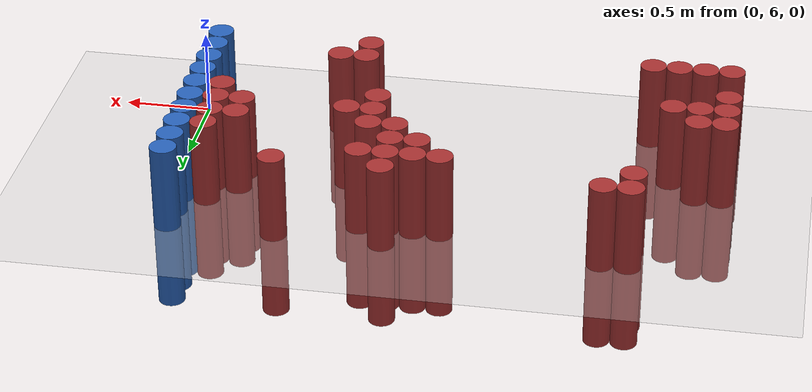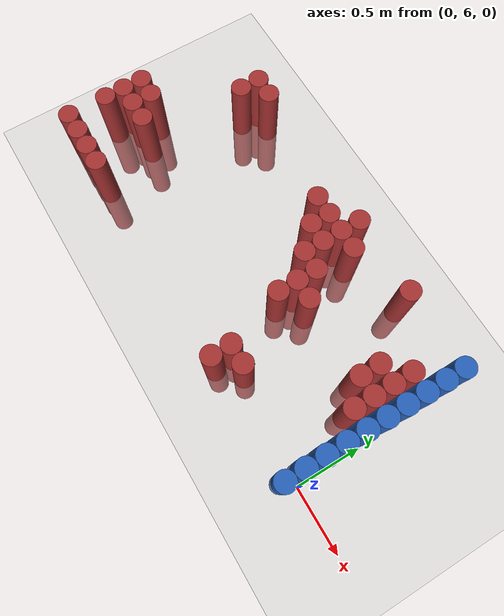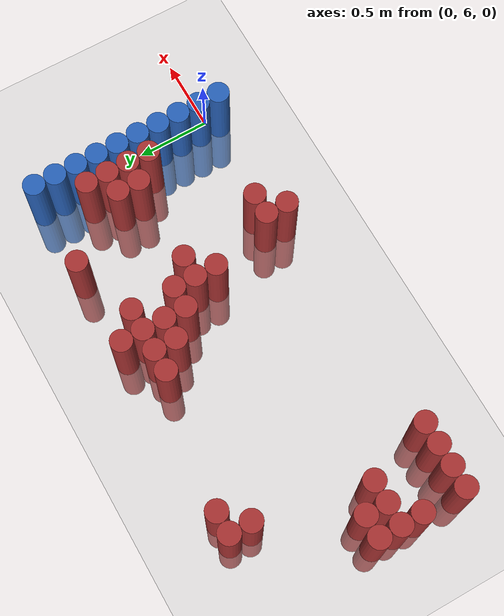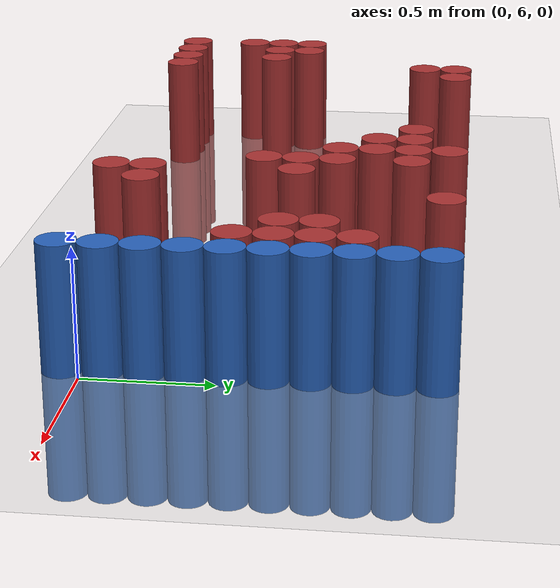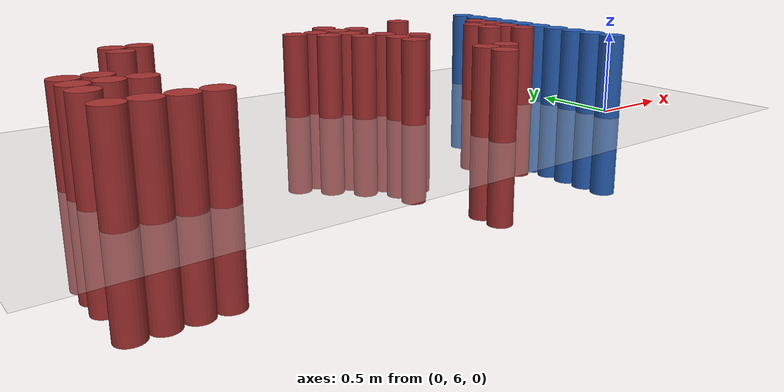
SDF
<sdf version="1.6">
 <world name="default">
  <model name="ground_plane">
   <static>1</static>
   <link name="link">
    <collision name="collision">
     <geometry><plane><normal>0 0 1</normal><size>100 100</size></plane></geometry>
     <surface><friction><ode><mu>100</mu><mu2>50</mu2></ode></friction></surface>
    </collision>
    <visual name="visual">
     <cast_shadows>0</cast_shadows>
     <geometry><plane><normal>0 0 1</normal><size>100 100</size></plane></geometry>
     <material>
      <script><uri>file://media/materials/scripts/gazebo.material</uri><name>Gazebo/Grey</name></script>
     </material>
    </visual>
   </link>
  </model>
  <model name="unit_cylinder_164">
   <static>1</static>
   <pose>-3.075000 5.925000 0.000000 0.000000 0.000000 0.000000</pose>
   <link name="link">
    <inertial>
     <mass>1</mass>
     <inertia><ixx>0.145833</ixx><ixy>0</ixy><ixz>0</ixz><iyy>0.145833</iyy><iyz>0</iyz><izz>0.125</izz></inertia>
    </inertial>
    <collision name="collision">
     <geometry><cylinder><radius>0.075000</radius><length>1</length></cylinder></geometry>
    </collision>
    <visual name="visual">
     <geometry><cylinder><radius>0.075000</radius><length>1</length></cylinder></geometry>
     <material>
      <ambient>0.648000 0.192000 0.192000 1</ambient>
      <diffuse>0.648000 0.192000 0.192000 1</diffuse>
     </material>
     <material>
      <script><name>Gazebo/Grey</name><uri>file://media/materials/scripts/gazebo.material</uri></script>
     </material>
    </visual>
   </link>
  </model>
  <model name="unit_cylinder_165">
   <static>1</static>
   <pose>-3.075000 6.225000 0.000000 0.000000 0.000000 0.000000</pose>
   <link name="link">
    <inertial>
     <mass>1</mass>
     <inertia><ixx>0.145833</ixx><ixy>0</ixy><ixz>0</ixz><iyy>0.145833</iyy><iyz>0</iyz><izz>0.125</izz></inertia>
    </inertial>
    <collision name="collision">
     <geometry><cylinder><radius>0.075000</radius><length>1</length></cylinder></geometry>
    </collision>
    <visual name="visual">
     <geometry><cylinder><radius>0.075000</radius><length>1</length></cylinder></geometry>
     <material>
      <ambient>0.648000 0.192000 0.192000 1</ambient>
      <diffuse>0.648000 0.192000 0.192000 1</diffuse>
     </material>
     <material>
      <script><name>Gazebo/Grey</name><uri>file://media/materials/scripts/gazebo.material</uri></script>
     </material>
    </visual>
   </link>
  </model>
  <model name="unit_cylinder_166">
   <static>1</static>
   <pose>-3.075000 6.375000 0.000000 0.000000 0.000000 0.000000</pose>
   <link name="link">
    <inertial>
     <mass>1</mass>
     <inertia><ixx>0.145833</ixx><ixy>0</ixy><ixz>0</ixz><iyy>0.145833</iyy><iyz>0</iyz><izz>0.125</izz></inertia>
    </inertial>
    <collision name="collision">
     <geometry><cylinder><radius>0.075000</radius><length>1</length></cylinder></geometry>
    </collision>
    <visual name="visual">
     <geometry><cylinder><radius>0.075000</radius><length>1</length></cylinder></geometry>
     <material>
      <ambient>0.648000 0.192000 0.192000 1</ambient>
      <diffuse>0.648000 0.192000 0.192000 1</diffuse>
     </material>
     <material>
      <script><name>Gazebo/Grey</name><uri>file://media/materials/scripts/gazebo.material</uri></script>
     </material>
    </visual>
   </link>
  </model>
  <model name="unit_cylinder_167">
   <static>1</static>
   <pose>-3.075000 6.525000 0.000000 0.000000 0.000000 0.000000</pose>
   <link name="link">
    <inertial>
     <mass>1</mass>
     <inertia><ixx>0.145833</ixx><ixy>0</ixy><ixz>0</ixz><iyy>0.145833</iyy><iyz>0</iyz><izz>0.125</izz></inertia>
    </inertial>
    <collision name="collision">
     <geometry><cylinder><radius>0.075000</radius><length>1</length></cylinder></geometry>
    </collision>
    <visual name="visual">
     <geometry><cylinder><radius>0.075000</radius><length>1</length></cylinder></geometry>
     <material>
      <ambient>0.648000 0.192000 0.192000 1</ambient>
      <diffuse>0.648000 0.192000 0.192000 1</diffuse>
     </material>
     <material>
      <script><name>Gazebo/Grey</name><uri>file://media/materials/scripts/gazebo.material</uri></script>
     </material>
    </visual>
   </link>
  </model>
  <model name="unit_cylinder_172">
   <static>1</static>
   <pose>-2.925000 5.925000 0.000000 0.000000 0.000000 0.000000</pose>
   <link name="link">
    <inertial>
     <mass>1</mass>
     <inertia><ixx>0.145833</ixx><ixy>0</ixy><ixz>0</ixz><iyy>0.145833</iyy><iyz>0</iyz><izz>0.125</izz></inertia>
    </inertial>
    <collision name="collision">
     <geometry><cylinder><radius>0.075000</radius><length>1</length></cylinder></geometry>
    </collision>
    <visual name="visual">
     <geometry><cylinder><radius>0.075000</radius><length>1</length></cylinder></geometry>
     <material>
      <ambient>0.648000 0.192000 0.192000 1</ambient>
      <diffuse>0.648000 0.192000 0.192000 1</diffuse>
     </material>
     <material>
      <script><name>Gazebo/Grey</name><uri>file://media/materials/scripts/gazebo.material</uri></script>
     </material>
    </visual>
   </link>
  </model>
  <model name="unit_cylinder_173">
   <static>1</static>
   <pose>-2.925000 6.375000 0.000000 0.000000 0.000000 0.000000</pose>
   <link name="link">
    <inertial>
     <mass>1</mass>
     <inertia><ixx>0.145833</ixx><ixy>0</ixy><ixz>0</ixz><iyy>0.145833</iyy><iyz>0</iyz><izz>0.125</izz></inertia>
    </inertial>
    <collision name="collision">
     <geometry><cylinder><radius>0.075000</radius><length>1</length></cylinder></geometry>
    </collision>
    <visual name="visual">
     <geometry><cylinder><radius>0.075000</radius><length>1</length></cylinder></geometry>
     <material>
      <ambient>0.648000 0.192000 0.192000 1</ambient>
      <diffuse>0.648000 0.192000 0.192000 1</diffuse>
     </material>
     <material>
      <script><name>Gazebo/Grey</name><uri>file://media/materials/scripts/gazebo.material</uri></script>
     </material>
    </visual>
   </link>
  </model>
  <model name="unit_cylinder_174">
   <static>1</static>
   <pose>-2.925000 6.525000 0.000000 0.000000 0.000000 0.000000</pose>
   <link name="link">
    <inertial>
     <mass>1</mass>
     <inertia><ixx>0.145833</ixx><ixy>0</ixy><ixz>0</ixz><iyy>0.145833</iyy><iyz>0</iyz><izz>0.125</izz></inertia>
    </inertial>
    <collision name="collision">
     <geometry><cylinder><radius>0.075000</radius><length>1</length></cylinder></geometry>
    </collision>
    <visual name="visual">
     <geometry><cylinder><radius>0.075000</radius><length>1</length></cylinder></geometry>
     <material>
      <ambient>0.648000 0.192000 0.192000 1</ambient>
      <diffuse>0.648000 0.192000 0.192000 1</diffuse>
     </material>
     <material>
      <script><name>Gazebo/Grey</name><uri>file://media/materials/scripts/gazebo.material</uri></script>
     </material>
    </visual>
   </link>
  </model>
  <model name="unit_cylinder_178">
   <static>1</static>
   <pose>-2.775000 5.925000 0.000000 0.000000 0.000000 0.000000</pose>
   <link name="link">
    <inertial>
     <mass>1</mass>
     <inertia><ixx>0.145833</ixx><ixy>0</ixy><ixz>0</ixz><iyy>0.145833</iyy><iyz>0</iyz><izz>0.125</izz></inertia>
    </inertial>
    <collision name="collision">
     <geometry><cylinder><radius>0.075000</radius><length>1</length></cylinder></geometry>
    </collision>
    <visual name="visual">
     <geometry><cylinder><radius>0.075000</radius><length>1</length></cylinder></geometry>
     <material>
      <ambient>0.648000 0.192000 0.192000 1</ambient>
      <diffuse>0.648000 0.192000 0.192000 1</diffuse>
     </material>
     <material>
      <script><name>Gazebo/Grey</name><uri>file://media/materials/scripts/gazebo.material</uri></script>
     </material>
    </visual>
   </link>
  </model>
  <model name="unit_cylinder_179">
   <static>1</static>
   <pose>-2.775000 6.375000 0.000000 0.000000 0.000000 0.000000</pose>
   <link name="link">
    <inertial>
     <mass>1</mass>
     <inertia><ixx>0.145833</ixx><ixy>0</ixy><ixz>0</ixz><iyy>0.145833</iyy><iyz>0</iyz><izz>0.125</izz></inertia>
    </inertial>
    <collision name="collision">
     <geometry><cylinder><radius>0.075000</radius><length>1</length></cylinder></geometry>
    </collision>
    <visual name="visual">
     <geometry><cylinder><radius>0.075000</radius><length>1</length></cylinder></geometry>
     <material>
      <ambient>0.648000 0.192000 0.192000 1</ambient>
      <diffuse>0.648000 0.192000 0.192000 1</diffuse>
     </material>
     <material>
      <script><name>Gazebo/Grey</name><uri>file://media/materials/scripts/gazebo.material</uri></script>
     </material>
    </visual>
   </link>
  </model>
  <model name="unit_cylinder_183">
   <static>1</static>
   <pose>-2.625000 5.925000 0.000000 0.000000 0.000000 0.000000</pose>
   <link name="link">
    <inertial>
     <mass>1</mass>
     <inertia><ixx>0.145833</ixx><ixy>0</ixy><ixz>0</ixz><iyy>0.145833</iyy><iyz>0</iyz><izz>0.125</izz></inertia>
    </inertial>
    <collision name="collision">
     <geometry><cylinder><radius>0.075000</radius><length>1</length></cylinder></geometry>
    </collision>
    <visual name="visual">
     <geometry><cylinder><radius>0.075000</radius><length>1</length></cylinder></geometry>
     <material>
      <ambient>0.648000 0.192000 0.192000 1</ambient>
      <diffuse>0.648000 0.192000 0.192000 1</diffuse>
     </material>
     <material>
      <script><name>Gazebo/Grey</name><uri>file://media/materials/scripts/gazebo.material</uri></script>
     </material>
    </visual>
   </link>
  </model>
  <model name="unit_cylinder_184">
   <static>1</static>
   <pose>-2.625000 7.125000 0.000000 0.000000 0.000000 0.000000</pose>
   <link name="link">
    <inertial>
     <mass>1</mass>
     <inertia><ixx>0.145833</ixx><ixy>0</ixy><ixz>0</ixz><iyy>0.145833</iyy><iyz>0</iyz><izz>0.125</izz></inertia>
    </inertial>
    <collision name="collision">
     <geometry><cylinder><radius>0.075000</radius><length>1</length></cylinder></geometry>
    </collision>
    <visual name="visual">
     <geometry><cylinder><radius>0.075000</radius><length>1</length></cylinder></geometry>
     <material>
      <ambient>0.648000 0.192000 0.192000 1</ambient>
      <diffuse>0.648000 0.192000 0.192000 1</diffuse>
     </material>
     <material>
      <script><name>Gazebo/Grey</name><uri>file://media/materials/scripts/gazebo.material</uri></script>
     </material>
    </visual>
   </link>
  </model>
  <model name="unit_cylinder_185">
   <static>1</static>
   <pose>-2.625000 7.275000 0.000000 0.000000 0.000000 0.000000</pose>
   <link name="link">
    <inertial>
     <mass>1</mass>
     <inertia><ixx>0.145833</ixx><ixy>0</ixy><ixz>0</ixz><iyy>0.145833</iyy><iyz>0</iyz><izz>0.125</izz></inertia>
    </inertial>
    <collision name="collision">
     <geometry><cylinder><radius>0.075000</radius><length>1</length></cylinder></geometry>
    </collision>
    <visual name="visual">
     <geometry><cylinder><radius>0.075000</radius><length>1</length></cylinder></geometry>
     <material>
      <ambient>0.648000 0.192000 0.192000 1</ambient>
      <diffuse>0.648000 0.192000 0.192000 1</diffuse>
     </material>
     <material>
      <script><name>Gazebo/Grey</name><uri>file://media/materials/scripts/gazebo.material</uri></script>
     </material>
    </visual>
   </link>
  </model>
  <model name="unit_cylinder_188">
   <static>1</static>
   <pose>-2.475000 7.275000 0.000000 0.000000 0.000000 0.000000</pose>
   <link name="link">
    <inertial>
     <mass>1</mass>
     <inertia><ixx>0.145833</ixx><ixy>0</ixy><ixz>0</ixz><iyy>0.145833</iyy><iyz>0</iyz><izz>0.125</izz></inertia>
    </inertial>
    <collision name="collision">
     <geometry><cylinder><radius>0.075000</radius><length>1</length></cylinder></geometry>
    </collision>
    <visual name="visual">
     <geometry><cylinder><radius>0.075000</radius><length>1</length></cylinder></geometry>
     <material>
      <ambient>0.648000 0.192000 0.192000 1</ambient>
      <diffuse>0.648000 0.192000 0.192000 1</diffuse>
     </material>
     <material>
      <script><name>Gazebo/Grey</name><uri>file://media/materials/scripts/gazebo.material</uri></script>
     </material>
    </visual>
   </link>
  </model>
  <model name="unit_cylinder_197">
   <static>1</static>
   <pose>-1.575000 7.125000 0.000000 0.000000 0.000000 0.000000</pose>
   <link name="link">
    <inertial>
     <mass>1</mass>
     <inertia><ixx>0.145833</ixx><ixy>0</ixy><ixz>0</ixz><iyy>0.145833</iyy><iyz>0</iyz><izz>0.125</izz></inertia>
    </inertial>
    <collision name="collision">
     <geometry><cylinder><radius>0.075000</radius><length>1</length></cylinder></geometry>
    </collision>
    <visual name="visual">
     <geometry><cylinder><radius>0.075000</radius><length>1</length></cylinder></geometry>
     <material>
      <ambient>0.648000 0.192000 0.192000 1</ambient>
      <diffuse>0.648000 0.192000 0.192000 1</diffuse>
     </material>
     <material>
      <script><name>Gazebo/Grey</name><uri>file://media/materials/scripts/gazebo.material</uri></script>
     </material>
    </visual>
   </link>
  </model>
  <model name="unit_cylinder_199">
   <static>1</static>
   <pose>-1.425000 6.975000 0.000000 0.000000 0.000000 0.000000</pose>
   <link name="link">
    <inertial>
     <mass>1</mass>
     <inertia><ixx>0.145833</ixx><ixy>0</ixy><ixz>0</ixz><iyy>0.145833</iyy><iyz>0</iyz><izz>0.125</izz></inertia>
    </inertial>
    <collision name="collision">
     <geometry><cylinder><radius>0.075000</radius><length>1</length></cylinder></geometry>
    </collision>
    <visual name="visual">
     <geometry><cylinder><radius>0.075000</radius><length>1</length></cylinder></geometry>
     <material>
      <ambient>0.648000 0.192000 0.192000 1</ambient>
      <diffuse>0.648000 0.192000 0.192000 1</diffuse>
     </material>
     <material>
      <script><name>Gazebo/Grey</name><uri>file://media/materials/scripts/gazebo.material</uri></script>
     </material>
    </visual>
   </link>
  </model>
  <model name="unit_cylinder_200">
   <static>1</static>
   <pose>-1.425000 7.125000 0.000000 0.000000 0.000000 0.000000</pose>
   <link name="link">
    <inertial>
     <mass>1</mass>
     <inertia><ixx>0.145833</ixx><ixy>0</ixy><ixz>0</ixz><iyy>0.145833</iyy><iyz>0</iyz><izz>0.125</izz></inertia>
    </inertial>
    <collision name="collision">
     <geometry><cylinder><radius>0.075000</radius><length>1</length></cylinder></geometry>
    </collision>
    <visual name="visual">
     <geometry><cylinder><radius>0.075000</radius><length>1</length></cylinder></geometry>
     <material>
      <ambient>0.648000 0.192000 0.192000 1</ambient>
      <diffuse>0.648000 0.192000 0.192000 1</diffuse>
     </material>
     <material>
      <script><name>Gazebo/Grey</name><uri>file://media/materials/scripts/gazebo.material</uri></script>
     </material>
    </visual>
   </link>
  </model>
  <model name="unit_cylinder_204">
   <static>1</static>
   <pose>-1.275000 6.825000 0.000000 0.000000 0.000000 0.000000</pose>
   <link name="link">
    <inertial>
     <mass>1</mass>
     <inertia><ixx>0.145833</ixx><ixy>0</ixy><ixz>0</ixz><iyy>0.145833</iyy><iyz>0</iyz><izz>0.125</izz></inertia>
    </inertial>
    <collision name="collision">
     <geometry><cylinder><radius>0.075000</radius><length>1</length></cylinder></geometry>
    </collision>
    <visual name="visual">
     <geometry><cylinder><radius>0.075000</radius><length>1</length></cylinder></geometry>
     <material>
      <ambient>0.648000 0.192000 0.192000 1</ambient>
      <diffuse>0.648000 0.192000 0.192000 1</diffuse>
     </material>
     <material>
      <script><name>Gazebo/Grey</name><uri>file://media/materials/scripts/gazebo.material</uri></script>
     </material>
    </visual>
   </link>
  </model>
  <model name="unit_cylinder_205">
   <static>1</static>
   <pose>-1.275000 6.975000 0.000000 0.000000 0.000000 0.000000</pose>
   <link name="link">
    <inertial>
     <mass>1</mass>
     <inertia><ixx>0.145833</ixx><ixy>0</ixy><ixz>0</ixz><iyy>0.145833</iyy><iyz>0</iyz><izz>0.125</izz></inertia>
    </inertial>
    <collision name="collision">
     <geometry><cylinder><radius>0.075000</radius><length>1</length></cylinder></geometry>
    </collision>
    <visual name="visual">
     <geometry><cylinder><radius>0.075000</radius><length>1</length></cylinder></geometry>
     <material>
      <ambient>0.648000 0.192000 0.192000 1</ambient>
      <diffuse>0.648000 0.192000 0.192000 1</diffuse>
     </material>
     <material>
      <script><name>Gazebo/Grey</name><uri>file://media/materials/scripts/gazebo.material</uri></script>
     </material>
    </visual>
   </link>
  </model>
  <model name="unit_cylinder_206">
   <static>1</static>
   <pose>-1.275000 7.125000 0.000000 0.000000 0.000000 0.000000</pose>
   <link name="link">
    <inertial>
     <mass>1</mass>
     <inertia><ixx>0.145833</ixx><ixy>0</ixy><ixz>0</ixz><iyy>0.145833</iyy><iyz>0</iyz><izz>0.125</izz></inertia>
    </inertial>
    <collision name="collision">
     <geometry><cylinder><radius>0.075000</radius><length>1</length></cylinder></geometry>
    </collision>
    <visual name="visual">
     <geometry><cylinder><radius>0.075000</radius><length>1</length></cylinder></geometry>
     <material>
      <ambient>0.648000 0.192000 0.192000 1</ambient>
      <diffuse>0.648000 0.192000 0.192000 1</diffuse>
     </material>
     <material>
      <script><name>Gazebo/Grey</name><uri>file://media/materials/scripts/gazebo.material</uri></script>
     </material>
    </visual>
   </link>
  </model>
  <model name="unit_cylinder_207">
   <static>1</static>
   <pose>-1.275000 7.275000 0.000000 0.000000 0.000000 0.000000</pose>
   <link name="link">
    <inertial>
     <mass>1</mass>
     <inertia><ixx>0.145833</ixx><ixy>0</ixy><ixz>0</ixz><iyy>0.145833</iyy><iyz>0</iyz><izz>0.125</izz></inertia>
    </inertial>
    <collision name="collision">
     <geometry><cylinder><radius>0.075000</radius><length>1</length></cylinder></geometry>
    </collision>
    <visual name="visual">
     <geometry><cylinder><radius>0.075000</radius><length>1</length></cylinder></geometry>
     <material>
      <ambient>0.648000 0.192000 0.192000 1</ambient>
      <diffuse>0.648000 0.192000 0.192000 1</diffuse>
     </material>
     <material>
      <script><name>Gazebo/Grey</name><uri>file://media/materials/scripts/gazebo.material</uri></script>
     </material>
    </visual>
   </link>
  </model>
  <model name="unit_cylinder_211">
   <static>1</static>
   <pose>-1.125000 6.525000 0.000000 0.000000 0.000000 0.000000</pose>
   <link name="link">
    <inertial>
     <mass>1</mass>
     <inertia><ixx>0.145833</ixx><ixy>0</ixy><ixz>0</ixz><iyy>0.145833</iyy><iyz>0</iyz><izz>0.125</izz></inertia>
    </inertial>
    <collision name="collision">
     <geometry><cylinder><radius>0.075000</radius><length>1</length></cylinder></geometry>
    </collision>
    <visual name="visual">
     <geometry><cylinder><radius>0.075000</radius><length>1</length></cylinder></geometry>
     <material>
      <ambient>0.648000 0.192000 0.192000 1</ambient>
      <diffuse>0.648000 0.192000 0.192000 1</diffuse>
     </material>
     <material>
      <script><name>Gazebo/Grey</name><uri>file://media/materials/scripts/gazebo.material</uri></script>
     </material>
    </visual>
   </link>
  </model>
  <model name="unit_cylinder_212">
   <static>1</static>
   <pose>-1.125000 6.675000 0.000000 0.000000 0.000000 0.000000</pose>
   <link name="link">
    <inertial>
     <mass>1</mass>
     <inertia><ixx>0.145833</ixx><ixy>0</ixy><ixz>0</ixz><iyy>0.145833</iyy><iyz>0</iyz><izz>0.125</izz></inertia>
    </inertial>
    <collision name="collision">
     <geometry><cylinder><radius>0.075000</radius><length>1</length></cylinder></geometry>
    </collision>
    <visual name="visual">
     <geometry><cylinder><radius>0.075000</radius><length>1</length></cylinder></geometry>
     <material>
      <ambient>0.648000 0.192000 0.192000 1</ambient>
      <diffuse>0.648000 0.192000 0.192000 1</diffuse>
     </material>
     <material>
      <script><name>Gazebo/Grey</name><uri>file://media/materials/scripts/gazebo.material</uri></script>
     </material>
    </visual>
   </link>
  </model>
  <model name="unit_cylinder_213">
   <static>1</static>
   <pose>-1.125000 6.825000 0.000000 0.000000 0.000000 0.000000</pose>
   <link name="link">
    <inertial>
     <mass>1</mass>
     <inertia><ixx>0.145833</ixx><ixy>0</ixy><ixz>0</ixz><iyy>0.145833</iyy><iyz>0</iyz><izz>0.125</izz></inertia>
    </inertial>
    <collision name="collision">
     <geometry><cylinder><radius>0.075000</radius><length>1</length></cylinder></geometry>
    </collision>
    <visual name="visual">
     <geometry><cylinder><radius>0.075000</radius><length>1</length></cylinder></geometry>
     <material>
      <ambient>0.648000 0.192000 0.192000 1</ambient>
      <diffuse>0.648000 0.192000 0.192000 1</diffuse>
     </material>
     <material>
      <script><name>Gazebo/Grey</name><uri>file://media/materials/scripts/gazebo.material</uri></script>
     </material>
    </visual>
   </link>
  </model>
  <model name="unit_cylinder_214">
   <static>1</static>
   <pose>-1.125000 7.125000 0.000000 0.000000 0.000000 0.000000</pose>
   <link name="link">
    <inertial>
     <mass>1</mass>
     <inertia><ixx>0.145833</ixx><ixy>0</ixy><ixz>0</ixz><iyy>0.145833</iyy><iyz>0</iyz><izz>0.125</izz></inertia>
    </inertial>
    <collision name="collision">
     <geometry><cylinder><radius>0.075000</radius><length>1</length></cylinder></geometry>
    </collision>
    <visual name="visual">
     <geometry><cylinder><radius>0.075000</radius><length>1</length></cylinder></geometry>
     <material>
      <ambient>0.648000 0.192000 0.192000 1</ambient>
      <diffuse>0.648000 0.192000 0.192000 1</diffuse>
     </material>
     <material>
      <script><name>Gazebo/Grey</name><uri>file://media/materials/scripts/gazebo.material</uri></script>
     </material>
    </visual>
   </link>
  </model>
  <model name="unit_cylinder_216">
   <static>1</static>
   <pose>-0.975000 5.925000 0.000000 0.000000 0.000000 0.000000</pose>
   <link name="link">
    <inertial>
     <mass>1</mass>
     <inertia><ixx>0.145833</ixx><ixy>0</ixy><ixz>0</ixz><iyy>0.145833</iyy><iyz>0</iyz><izz>0.125</izz></inertia>
    </inertial>
    <collision name="collision">
     <geometry><cylinder><radius>0.075000</radius><length>1</length></cylinder></geometry>
    </collision>
    <visual name="visual">
     <geometry><cylinder><radius>0.075000</radius><length>1</length></cylinder></geometry>
     <material>
      <ambient>0.648000 0.192000 0.192000 1</ambient>
      <diffuse>0.648000 0.192000 0.192000 1</diffuse>
     </material>
     <material>
      <script><name>Gazebo/Grey</name><uri>file://media/materials/scripts/gazebo.material</uri></script>
     </material>
    </visual>
   </link>
  </model>
  <model name="unit_cylinder_217">
   <static>1</static>
   <pose>-0.975000 6.075000 0.000000 0.000000 0.000000 0.000000</pose>
   <link name="link">
    <inertial>
     <mass>1</mass>
     <inertia><ixx>0.145833</ixx><ixy>0</ixy><ixz>0</ixz><iyy>0.145833</iyy><iyz>0</iyz><izz>0.125</izz></inertia>
    </inertial>
    <collision name="collision">
     <geometry><cylinder><radius>0.075000</radius><length>1</length></cylinder></geometry>
    </collision>
    <visual name="visual">
     <geometry><cylinder><radius>0.075000</radius><length>1</length></cylinder></geometry>
     <material>
      <ambient>0.648000 0.192000 0.192000 1</ambient>
      <diffuse>0.648000 0.192000 0.192000 1</diffuse>
     </material>
     <material>
      <script><name>Gazebo/Grey</name><uri>file://media/materials/scripts/gazebo.material</uri></script>
     </material>
    </visual>
   </link>
  </model>
  <model name="unit_cylinder_218">
   <static>1</static>
   <pose>-0.975000 6.675000 0.000000 0.000000 0.000000 0.000000</pose>
   <link name="link">
    <inertial>
     <mass>1</mass>
     <inertia><ixx>0.145833</ixx><ixy>0</ixy><ixz>0</ixz><iyy>0.145833</iyy><iyz>0</iyz><izz>0.125</izz></inertia>
    </inertial>
    <collision name="collision">
     <geometry><cylinder><radius>0.075000</radius><length>1</length></cylinder></geometry>
    </collision>
    <visual name="visual">
     <geometry><cylinder><radius>0.075000</radius><length>1</length></cylinder></geometry>
     <material>
      <ambient>0.648000 0.192000 0.192000 1</ambient>
      <diffuse>0.648000 0.192000 0.192000 1</diffuse>
     </material>
     <material>
      <script><name>Gazebo/Grey</name><uri>file://media/materials/scripts/gazebo.material</uri></script>
     </material>
    </visual>
   </link>
  </model>
  <model name="unit_cylinder_220">
   <static>1</static>
   <pose>-0.825000 6.075000 0.000000 0.000000 0.000000 0.000000</pose>
   <link name="link">
    <inertial>
     <mass>1</mass>
     <inertia><ixx>0.145833</ixx><ixy>0</ixy><ixz>0</ixz><iyy>0.145833</iyy><iyz>0</iyz><izz>0.125</izz></inertia>
    </inertial>
    <collision name="collision">
     <geometry><cylinder><radius>0.075000</radius><length>1</length></cylinder></geometry>
    </collision>
    <visual name="visual">
     <geometry><cylinder><radius>0.075000</radius><length>1</length></cylinder></geometry>
     <material>
      <ambient>0.648000 0.192000 0.192000 1</ambient>
      <diffuse>0.648000 0.192000 0.192000 1</diffuse>
     </material>
     <material>
      <script><name>Gazebo/Grey</name><uri>file://media/materials/scripts/gazebo.material</uri></script>
     </material>
    </visual>
   </link>
  </model>
  <model name="unit_cylinder_221">
   <static>1</static>
   <pose>-0.675000 7.275000 0.000000 0.000000 0.000000 0.000000</pose>
   <link name="link">
    <inertial>
     <mass>1</mass>
     <inertia><ixx>0.145833</ixx><ixy>0</ixy><ixz>0</ixz><iyy>0.145833</iyy><iyz>0</iyz><izz>0.125</izz></inertia>
    </inertial>
    <collision name="collision">
     <geometry><cylinder><radius>0.075000</radius><length>1</length></cylinder></geometry>
    </collision>
    <visual name="visual">
     <geometry><cylinder><radius>0.075000</radius><length>1</length></cylinder></geometry>
     <material>
      <ambient>0.648000 0.192000 0.192000 1</ambient>
      <diffuse>0.648000 0.192000 0.192000 1</diffuse>
     </material>
     <material>
      <script><name>Gazebo/Grey</name><uri>file://media/materials/scripts/gazebo.material</uri></script>
     </material>
    </visual>
   </link>
  </model>
  <model name="unit_cylinder_224">
   <static>1</static>
   <pose>-0.375000 6.675000 0.000000 0.000000 0.000000 0.000000</pose>
   <link name="link">
    <inertial>
     <mass>1</mass>
     <inertia><ixx>0.145833</ixx><ixy>0</ixy><ixz>0</ixz><iyy>0.145833</iyy><iyz>0</iyz><izz>0.125</izz></inertia>
    </inertial>
    <collision name="collision">
     <geometry><cylinder><radius>0.075000</radius><length>1</length></cylinder></geometry>
    </collision>
    <visual name="visual">
     <geometry><cylinder><radius>0.075000</radius><length>1</length></cylinder></geometry>
     <material>
      <ambient>0.648000 0.192000 0.192000 1</ambient>
      <diffuse>0.648000 0.192000 0.192000 1</diffuse>
     </material>
     <material>
      <script><name>Gazebo/Grey</name><uri>file://media/materials/scripts/gazebo.material</uri></script>
     </material>
    </visual>
   </link>
  </model>
  <model name="unit_cylinder_225">
   <static>1</static>
   <pose>-0.375000 6.825000 0.000000 0.000000 0.000000 0.000000</pose>
   <link name="link">
    <inertial>
     <mass>1</mass>
     <inertia><ixx>0.145833</ixx><ixy>0</ixy><ixz>0</ixz><iyy>0.145833</iyy><iyz>0</iyz><izz>0.125</izz></inertia>
    </inertial>
    <collision name="collision">
     <geometry><cylinder><radius>0.075000</radius><length>1</length></cylinder></geometry>
    </collision>
    <visual name="visual">
     <geometry><cylinder><radius>0.075000</radius><length>1</length></cylinder></geometry>
     <material>
      <ambient>0.648000 0.192000 0.192000 1</ambient>
      <diffuse>0.648000 0.192000 0.192000 1</diffuse>
     </material>
     <material>
      <script><name>Gazebo/Grey</name><uri>file://media/materials/scripts/gazebo.material</uri></script>
     </material>
    </visual>
   </link>
  </model>
  <model name="unit_cylinder_231">
   <static>1</static>
   <pose>-0.225000 6.525000 0.000000 0.000000 0.000000 0.000000</pose>
   <link name="link">
    <inertial>
     <mass>1</mass>
     <inertia><ixx>0.145833</ixx><ixy>0</ixy><ixz>0</ixz><iyy>0.145833</iyy><iyz>0</iyz><izz>0.125</izz></inertia>
    </inertial>
    <collision name="collision">
     <geometry><cylinder><radius>0.075000</radius><length>1</length></cylinder></geometry>
    </collision>
    <visual name="visual">
     <geometry><cylinder><radius>0.075000</radius><length>1</length></cylinder></geometry>
     <material>
      <ambient>0.648000 0.192000 0.192000 1</ambient>
      <diffuse>0.648000 0.192000 0.192000 1</diffuse>
     </material>
     <material>
      <script><name>Gazebo/Grey</name><uri>file://media/materials/scripts/gazebo.material</uri></script>
     </material>
    </visual>
   </link>
  </model>
  <model name="unit_cylinder_232">
   <static>1</static>
   <pose>-0.225000 6.675000 0.000000 0.000000 0.000000 0.000000</pose>
   <link name="link">
    <inertial>
     <mass>1</mass>
     <inertia><ixx>0.145833</ixx><ixy>0</ixy><ixz>0</ixz><iyy>0.145833</iyy><iyz>0</iyz><izz>0.125</izz></inertia>
    </inertial>
    <collision name="collision">
     <geometry><cylinder><radius>0.075000</radius><length>1</length></cylinder></geometry>
    </collision>
    <visual name="visual">
     <geometry><cylinder><radius>0.075000</radius><length>1</length></cylinder></geometry>
     <material>
      <ambient>0.648000 0.192000 0.192000 1</ambient>
      <diffuse>0.648000 0.192000 0.192000 1</diffuse>
     </material>
     <material>
      <script><name>Gazebo/Grey</name><uri>file://media/materials/scripts/gazebo.material</uri></script>
     </material>
    </visual>
   </link>
  </model>
  <model name="unit_cylinder_233">
   <static>1</static>
   <pose>-0.225000 6.825000 0.000000 0.000000 0.000000 0.000000</pose>
   <link name="link">
    <inertial>
     <mass>1</mass>
     <inertia><ixx>0.145833</ixx><ixy>0</ixy><ixz>0</ixz><iyy>0.145833</iyy><iyz>0</iyz><izz>0.125</izz></inertia>
    </inertial>
    <collision name="collision">
     <geometry><cylinder><radius>0.075000</radius><length>1</length></cylinder></geometry>
    </collision>
    <visual name="visual">
     <geometry><cylinder><radius>0.075000</radius><length>1</length></cylinder></geometry>
     <material>
      <ambient>0.648000 0.192000 0.192000 1</ambient>
      <diffuse>0.648000 0.192000 0.192000 1</diffuse>
     </material>
     <material>
      <script><name>Gazebo/Grey</name><uri>file://media/materials/scripts/gazebo.material</uri></script>
     </material>
    </visual>
   </link>
  </model>
  <model name="unit_cylinder_234">
   <static>1</static>
   <pose>-0.225000 6.975000 0.000000 0.000000 0.000000 0.000000</pose>
   <link name="link">
    <inertial>
     <mass>1</mass>
     <inertia><ixx>0.145833</ixx><ixy>0</ixy><ixz>0</ixz><iyy>0.145833</iyy><iyz>0</iyz><izz>0.125</izz></inertia>
    </inertial>
    <collision name="collision">
     <geometry><cylinder><radius>0.075000</radius><length>1</length></cylinder></geometry>
    </collision>
    <visual name="visual">
     <geometry><cylinder><radius>0.075000</radius><length>1</length></cylinder></geometry>
     <material>
      <ambient>0.648000 0.192000 0.192000 1</ambient>
      <diffuse>0.648000 0.192000 0.192000 1</diffuse>
     </material>
     <material>
      <script><name>Gazebo/Grey</name><uri>file://media/materials/scripts/gazebo.material</uri></script>
     </material>
    </visual>
   </link>
  </model>
  <model name="unit_cylinder_249">
   <static>1</static>
   <pose>-0.075000 5.925000 0.000000 0.000000 0.000000 0.000000</pose>
   <link name="link">
    <inertial>
     <mass>1</mass>
     <inertia><ixx>0.145833</ixx><ixy>0</ixy><ixz>0</ixz><iyy>0.145833</iyy><iyz>0</iyz><izz>0.125</izz></inertia>
    </inertial>
    <collision name="collision">
     <geometry><cylinder><radius>0.075000</radius><length>1</length></cylinder></geometry>
    </collision>
    <visual name="visual">
     <geometry><cylinder><radius>0.075000</radius><length>1</length></cylinder></geometry>
     <material>
      <ambient>0.152000 0.379000 0.720000 1</ambient>
      <diffuse>0.152000 0.379000 0.720000 1</diffuse>
     </material>
     <material>
      <script><name>Gazebo/Grey</name><uri>file://media/materials/scripts/gazebo.material</uri></script>
     </material>
    </visual>
   </link>
  </model>
  <model name="unit_cylinder_250">
   <static>1</static>
   <pose>-0.075000 6.075000 0.000000 0.000000 0.000000 0.000000</pose>
   <link name="link">
    <inertial>
     <mass>1</mass>
     <inertia><ixx>0.145833</ixx><ixy>0</ixy><ixz>0</ixz><iyy>0.145833</iyy><iyz>0</iyz><izz>0.125</izz></inertia>
    </inertial>
    <collision name="collision">
     <geometry><cylinder><radius>0.075000</radius><length>1</length></cylinder></geometry>
    </collision>
    <visual name="visual">
     <geometry><cylinder><radius>0.075000</radius><length>1</length></cylinder></geometry>
     <material>
      <ambient>0.152000 0.379000 0.720000 1</ambient>
      <diffuse>0.152000 0.379000 0.720000 1</diffuse>
     </material>
     <material>
      <script><name>Gazebo/Grey</name><uri>file://media/materials/scripts/gazebo.material</uri></script>
     </material>
    </visual>
   </link>
  </model>
  <model name="unit_cylinder_251">
   <static>1</static>
   <pose>-0.075000 6.225000 0.000000 0.000000 0.000000 0.000000</pose>
   <link name="link">
    <inertial>
     <mass>1</mass>
     <inertia><ixx>0.145833</ixx><ixy>0</ixy><ixz>0</ixz><iyy>0.145833</iyy><iyz>0</iyz><izz>0.125</izz></inertia>
    </inertial>
    <collision name="collision">
     <geometry><cylinder><radius>0.075000</radius><length>1</length></cylinder></geometry>
    </collision>
    <visual name="visual">
     <geometry><cylinder><radius>0.075000</radius><length>1</length></cylinder></geometry>
     <material>
      <ambient>0.152000 0.379000 0.720000 1</ambient>
      <diffuse>0.152000 0.379000 0.720000 1</diffuse>
     </material>
     <material>
      <script><name>Gazebo/Grey</name><uri>file://media/materials/scripts/gazebo.material</uri></script>
     </material>
    </visual>
   </link>
  </model>
  <model name="unit_cylinder_252">
   <static>1</static>
   <pose>-0.075000 6.375000 0.000000 0.000000 0.000000 0.000000</pose>
   <link name="link">
    <inertial>
     <mass>1</mass>
     <inertia><ixx>0.145833</ixx><ixy>0</ixy><ixz>0</ixz><iyy>0.145833</iyy><iyz>0</iyz><izz>0.125</izz></inertia>
    </inertial>
    <collision name="collision">
     <geometry><cylinder><radius>0.075000</radius><length>1</length></cylinder></geometry>
    </collision>
    <visual name="visual">
     <geometry><cylinder><radius>0.075000</radius><length>1</length></cylinder></geometry>
     <material>
      <ambient>0.152000 0.379000 0.720000 1</ambient>
      <diffuse>0.152000 0.379000 0.720000 1</diffuse>
     </material>
     <material>
      <script><name>Gazebo/Grey</name><uri>file://media/materials/scripts/gazebo.material</uri></script>
     </material>
    </visual>
   </link>
  </model>
  <model name="unit_cylinder_253">
   <static>1</static>
   <pose>-0.075000 6.525000 0.000000 0.000000 0.000000 0.000000</pose>
   <link name="link">
    <inertial>
     <mass>1</mass>
     <inertia><ixx>0.145833</ixx><ixy>0</ixy><ixz>0</ixz><iyy>0.145833</iyy><iyz>0</iyz><izz>0.125</izz></inertia>
    </inertial>
    <collision name="collision">
     <geometry><cylinder><radius>0.075000</radius><length>1</length></cylinder></geometry>
    </collision>
    <visual name="visual">
     <geometry><cylinder><radius>0.075000</radius><length>1</length></cylinder></geometry>
     <material>
      <ambient>0.152000 0.379000 0.720000 1</ambient>
      <diffuse>0.152000 0.379000 0.720000 1</diffuse>
     </material>
     <material>
      <script><name>Gazebo/Grey</name><uri>file://media/materials/scripts/gazebo.material</uri></script>
     </material>
    </visual>
   </link>
  </model>
  <model name="unit_cylinder_254">
   <static>1</static>
   <pose>-0.075000 6.675000 0.000000 0.000000 0.000000 0.000000</pose>
   <link name="link">
    <inertial>
     <mass>1</mass>
     <inertia><ixx>0.145833</ixx><ixy>0</ixy><ixz>0</ixz><iyy>0.145833</iyy><iyz>0</iyz><izz>0.125</izz></inertia>
    </inertial>
    <collision name="collision">
     <geometry><cylinder><radius>0.075000</radius><length>1</length></cylinder></geometry>
    </collision>
    <visual name="visual">
     <geometry><cylinder><radius>0.075000</radius><length>1</length></cylinder></geometry>
     <material>
      <ambient>0.152000 0.379000 0.720000 1</ambient>
      <diffuse>0.152000 0.379000 0.720000 1</diffuse>
     </material>
     <material>
      <script><name>Gazebo/Grey</name><uri>file://media/materials/scripts/gazebo.material</uri></script>
     </material>
    </visual>
   </link>
  </model>
  <model name="unit_cylinder_255">
   <static>1</static>
   <pose>-0.075000 6.825000 0.000000 0.000000 0.000000 0.000000</pose>
   <link name="link">
    <inertial>
     <mass>1</mass>
     <inertia><ixx>0.145833</ixx><ixy>0</ixy><ixz>0</ixz><iyy>0.145833</iyy><iyz>0</iyz><izz>0.125</izz></inertia>
    </inertial>
    <collision name="collision">
     <geometry><cylinder><radius>0.075000</radius><length>1</length></cylinder></geometry>
    </collision>
    <visual name="visual">
     <geometry><cylinder><radius>0.075000</radius><length>1</length></cylinder></geometry>
     <material>
      <ambient>0.152000 0.379000 0.720000 1</ambient>
      <diffuse>0.152000 0.379000 0.720000 1</diffuse>
     </material>
     <material>
      <script><name>Gazebo/Grey</name><uri>file://media/materials/scripts/gazebo.material</uri></script>
     </material>
    </visual>
   </link>
  </model>
  <model name="unit_cylinder_256">
   <static>1</static>
   <pose>-0.075000 6.975000 0.000000 0.000000 0.000000 0.000000</pose>
   <link name="link">
    <inertial>
     <mass>1</mass>
     <inertia><ixx>0.145833</ixx><ixy>0</ixy><ixz>0</ixz><iyy>0.145833</iyy><iyz>0</iyz><izz>0.125</izz></inertia>
    </inertial>
    <collision name="collision">
     <geometry><cylinder><radius>0.075000</radius><length>1</length></cylinder></geometry>
    </collision>
    <visual name="visual">
     <geometry><cylinder><radius>0.075000</radius><length>1</length></cylinder></geometry>
     <material>
      <ambient>0.152000 0.379000 0.720000 1</ambient>
      <diffuse>0.152000 0.379000 0.720000 1</diffuse>
     </material>
     <material>
      <script><name>Gazebo/Grey</name><uri>file://media/materials/scripts/gazebo.material</uri></script>
     </material>
    </visual>
   </link>
  </model>
  <model name="unit_cylinder_257">
   <static>1</static>
   <pose>-0.075000 7.125000 0.000000 0.000000 0.000000 0.000000</pose>
   <link name="link">
    <inertial>
     <mass>1</mass>
     <inertia><ixx>0.145833</ixx><ixy>0</ixy><ixz>0</ixz><iyy>0.145833</iyy><iyz>0</iyz><izz>0.125</izz></inertia>
    </inertial>
    <collision name="collision">
     <geometry><cylinder><radius>0.075000</radius><length>1</length></cylinder></geometry>
    </collision>
    <visual name="visual">
     <geometry><cylinder><radius>0.075000</radius><length>1</length></cylinder></geometry>
     <material>
      <ambient>0.152000 0.379000 0.720000 1</ambient>
      <diffuse>0.152000 0.379000 0.720000 1</diffuse>
     </material>
     <material>
      <script><name>Gazebo/Grey</name><uri>file://media/materials/scripts/gazebo.material</uri></script>
     </material>
    </visual>
   </link>
  </model>
  <model name="unit_cylinder_258">
   <static>1</static>
   <pose>-0.075000 7.275000 0.000000 0.000000 0.000000 0.000000</pose>
   <link name="link">
    <inertial>
     <mass>1</mass>
     <inertia><ixx>0.145833</ixx><ixy>0</ixy><ixz>0</ixz><iyy>0.145833</iyy><iyz>0</iyz><izz>0.125</izz></inertia>
    </inertial>
    <collision name="collision">
     <geometry><cylinder><radius>0.075000</radius><length>1</length></cylinder></geometry>
    </collision>
    <visual name="visual">
     <geometry><cylinder><radius>0.075000</radius><length>1</length></cylinder></geometry>
     <material>
      <ambient>0.152000 0.379000 0.720000 1</ambient>
      <diffuse>0.152000 0.379000 0.720000 1</diffuse>
     </material>
     <material>
      <script><name>Gazebo/Grey</name><uri>file://media/materials/scripts/gazebo.material</uri></script>
     </material>
    </visual>
   </link>
  </model>
 </world>
</sdf>
